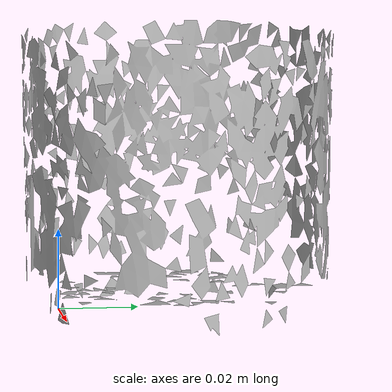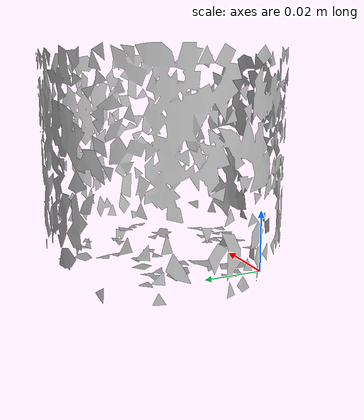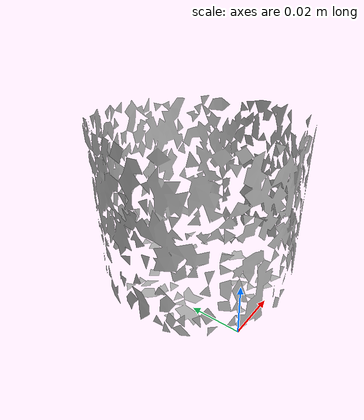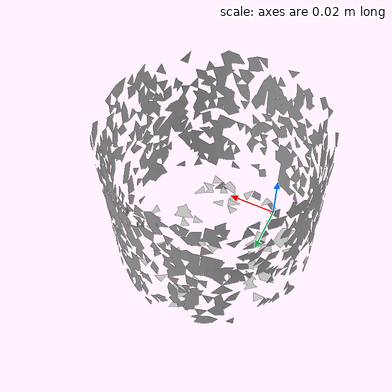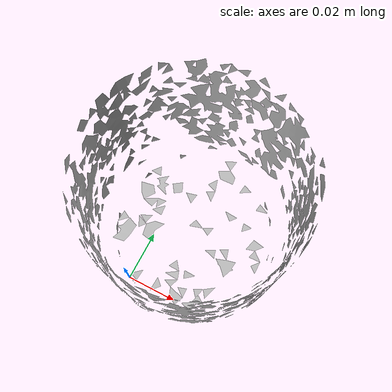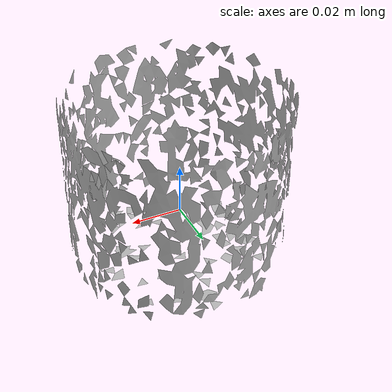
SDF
<?xml version="1.0" ?>
<sdf version="1.4">
  <model name='ycb_065-g_cups'>
    <link name='body'>
      <inertial>
        <mass>0.019</mass>
        <pose>0.0129346020171 0.0280948103329 0.0348743533874 0 0 0</pose>
        <inertia>
          <ixx>2.21435945508e-05</ixx>
          <ixy>-1.0846492586e-07</ixy>
          <ixz>-4.59909285305e-07</ixz>
          <iyy>2.23081634604e-05</iyy>
          <iyz>9.53237263038e-08</iyz>
          <izz>2.35739334182e-05</izz>
        </inertia>
      </inertial>
      <visual name='ycb_065-g_cups_visual'>
        <pose>0 0 0 0 0 0</pose>
        <geometry>
          <mesh>
            <uri>model://ycb_065-g_cups/meshes/textured.dae</uri>
          </mesh>
        </geometry>
      </visual>
      <collision name='ycb_065-g_cups_collision'>
        <pose>0 0 0 0 0 0</pose>
        <geometry>
          <mesh>
            <uri>model://ycb_065-g_cups/meshes/nontextured.stl</uri>
          </mesh>
        </geometry>
        <max_contacts>10</max_contacts>
      </collision>
    </link>
  </model>
</sdf>
